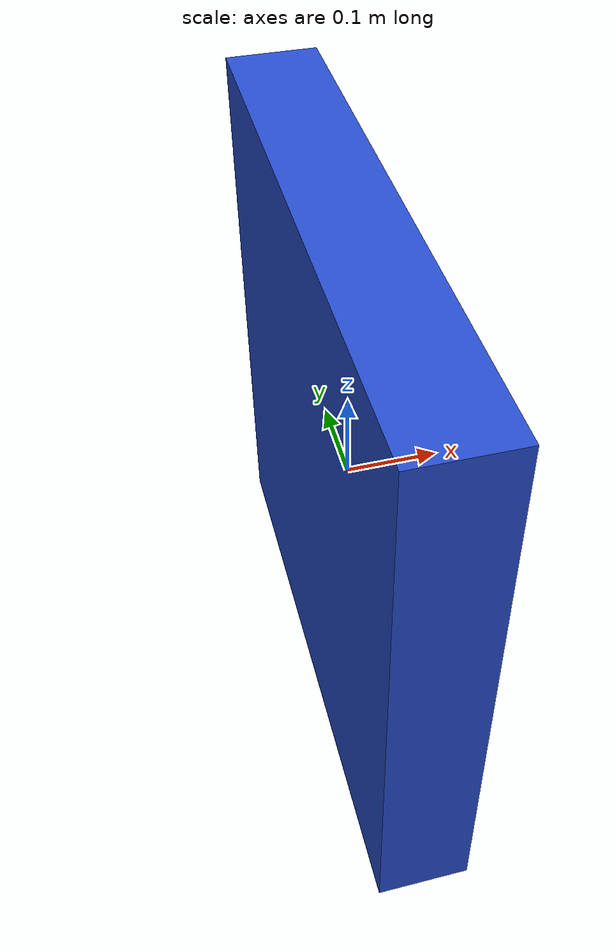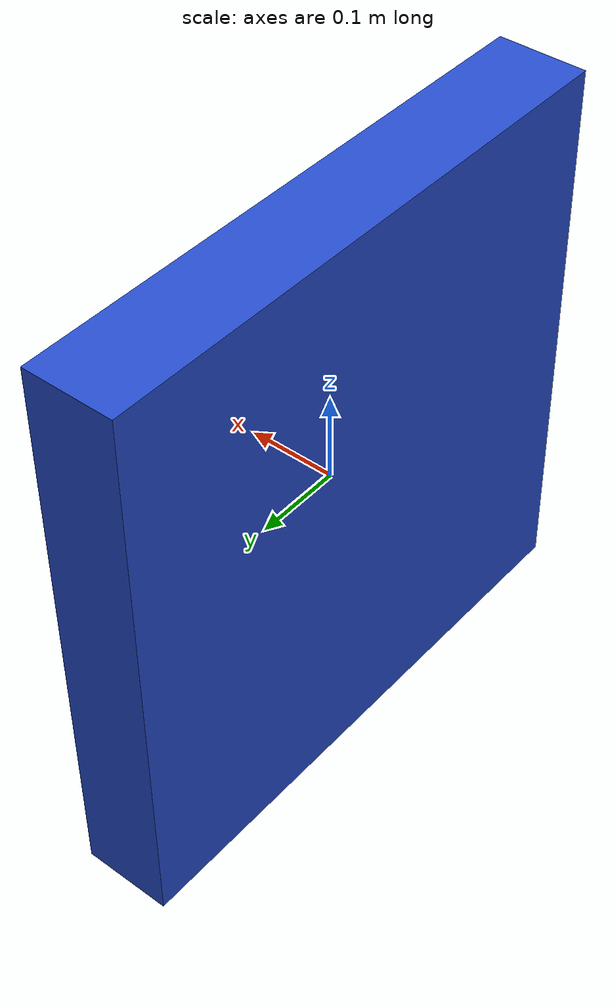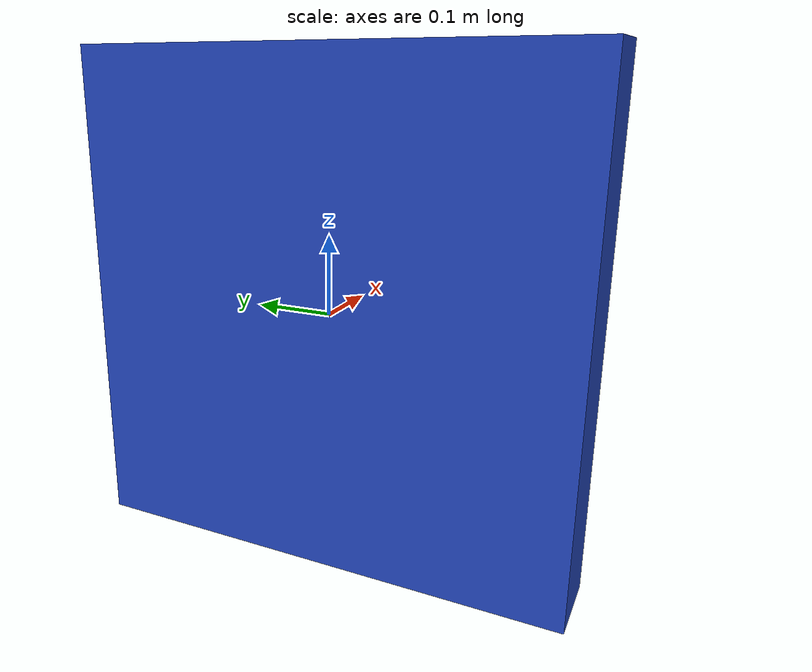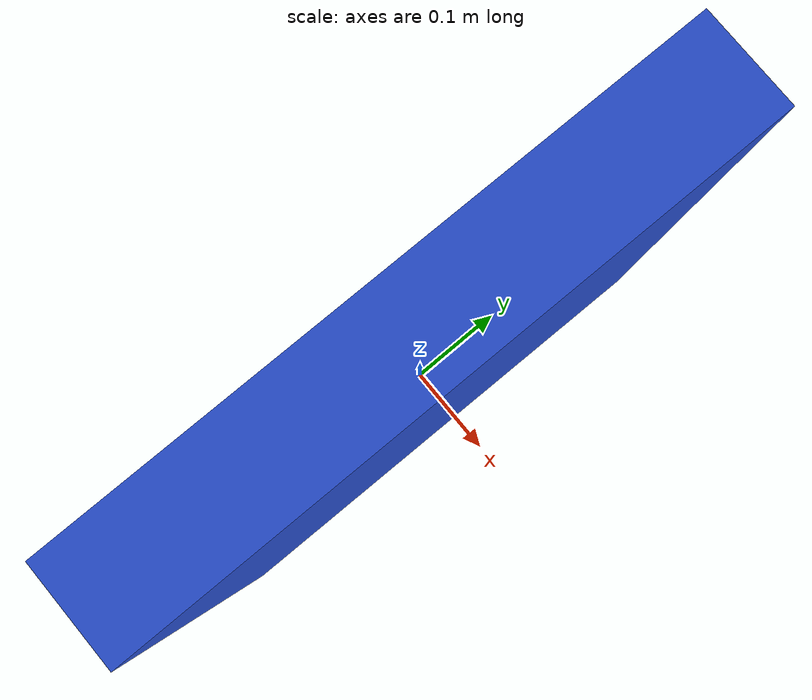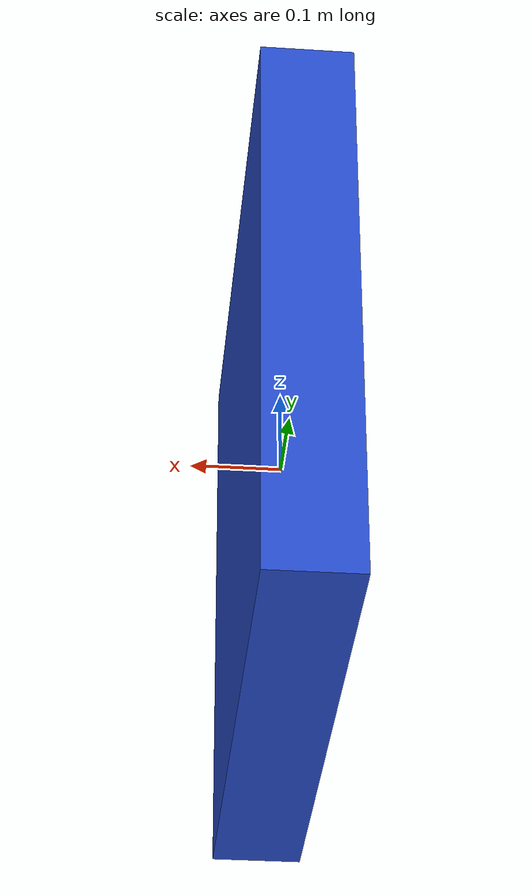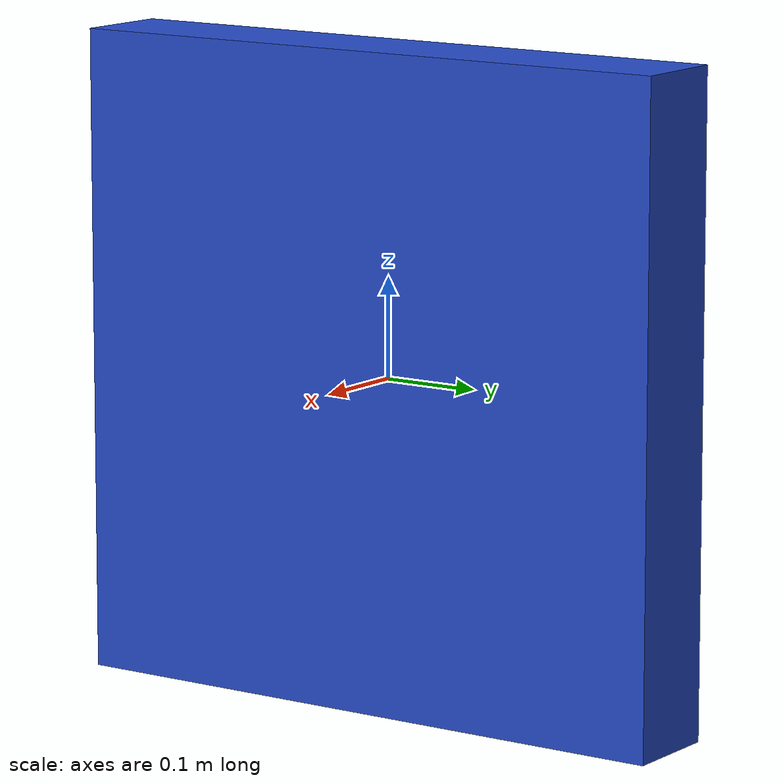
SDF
<?xml version="1.0"?>
<sdf version="1.6">
  <model name="dock_poster_plus">
    <static>true</static>
    <link name="base_link">
      <collision name="dock">
        <geometry>
          <box>
            <size>0.1 0.6477 0.6477</size>
          </box>
        </geometry>
      </collision>
      <visual name="dock">
        <geometry>
          <box>
            <size>0.1 0.6477 0.6477</size>
          </box>
        </geometry>
        <material>
          <script>
            <uri>file://media/materials/scripts/gazebo.material</uri>
            <name>Gazebo/Blue</name>
          </script>
        </material>
      </visual>
    </link>
  </model>
</sdf>
